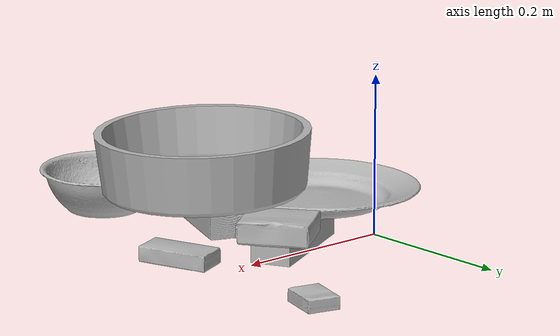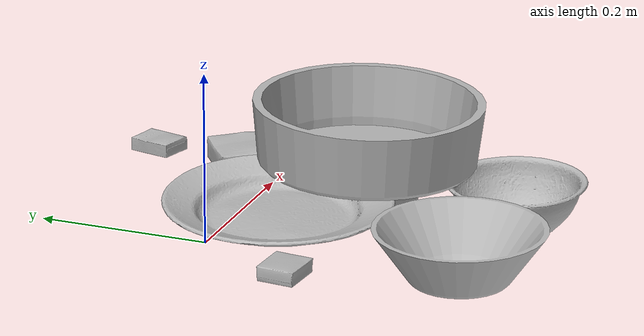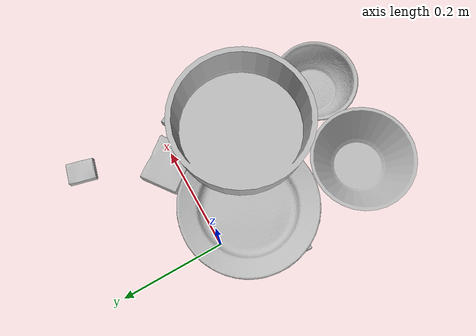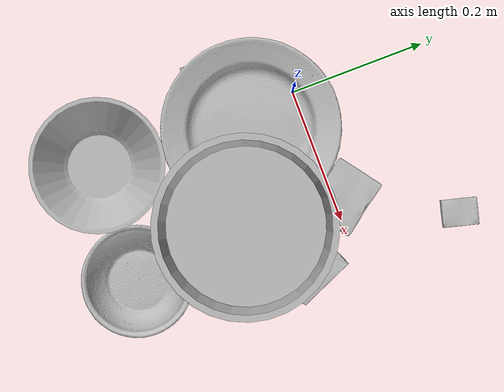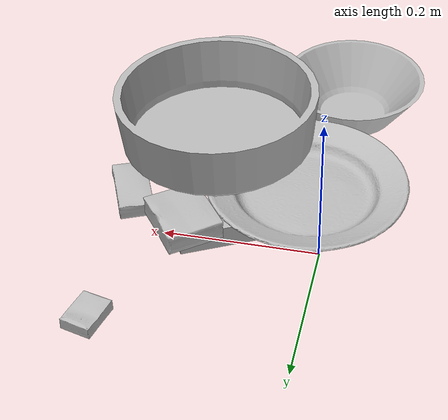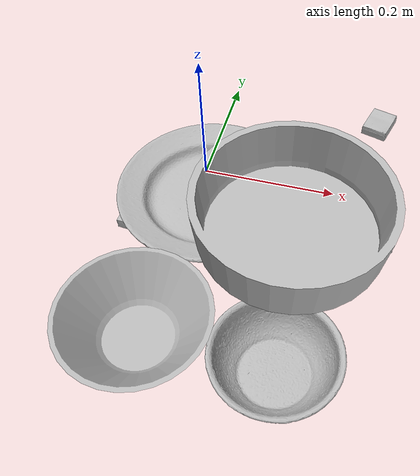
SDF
<sdf version="1.4">
  <world name="default">
    <light name="light1" type="point">
      <pose>0 0 1 0 0 0</pose>
      <diffuse>3 3 3 1</diffuse>
      <specular>3 3 3 1</specular>
    </light>
    <light name="light2" type="point">
      <pose>0 0.5 2 0 0 0</pose>
      <diffuse>1 1 1 1</diffuse>
      <specular>1 1 1 1</specular>
    </light>
    <light name="light3" type="point">
      <pose>0 0.5 2 0 0 0</pose>
      <diffuse>3 3 3 1</diffuse>
      <specular>3 3 3 1</specular>
    </light>
    <scene>
      <ambient>0.7 0.7 0.7</ambient>
    </scene>
    <model name="box1">
      <link name="link_box1">
        <collision name="default">
          <geometry>
            <mesh>
              <uri>model://jenga/collision_meshes/collision.obj</uri>
              <scale>1.0 1.0 1.0</scale>
            </mesh>
          </geometry>
          <surface>
            <friction>
              <ode>
                <mu>0.5</mu>
                <mu2>0.5</mu2>
              </ode>
            </friction>
          <contact>
        <ode>
            <max_vel>0</max_vel>
            <min_depth>0.0001</min_depth>
            <kp>1e8</kp>
        </ode>
    </contact></surface>
        </collision>
        <visual name="default">
          <geometry>
            <mesh>
              <uri>model://jenga/visual_meshes/visual.dae</uri>
              <scale>1.0 1.0 1.0</scale>
            </mesh>
          </geometry>
        </visual>
        <inertial>
          <mass>0.24226053059101105</mass>
          <pose>-2.502855807051674e-07 -0.0001025000965455547 -4.092339804628864e-05 0.0 -7.34215461761844e-07 0.0</pose>
          <inertia>
            <ixx>6.703936e-05</ixx>
            <iyy>0.0004542569</iyy>
            <izz>0.00048495785</izz>
            <ixy>0</ixy>
            <ixz>0</ixz>
            <iyz>0</iyz>
          </inertia>
        </inertial>
      </link>
      <pose>0.11413301527500153 -0.02175750583410263 0.015002173371613026 -2.245402170634637e-05 -5.897791819427794e-06 0.46977616080872353</pose>
    </model>
    <model name="box11">
      <link name="link_box11">
        <collision name="default">
          <geometry>
            <mesh>
              <uri>model://sugar_box/collision_meshes/collision.obj</uri>
              <scale>0.5 0.5 0.5</scale>
            </mesh>
          </geometry>
          <surface>
            <friction>
              <ode>
                <mu>0.5</mu>
                <mu2>0.5</mu2>
              </ode>
            </friction>
          <contact>
        <ode>
            <max_vel>0</max_vel>
            <min_depth>0.0001</min_depth>
            <kp>1e8</kp>
        </ode>
    </contact></surface>
        </collision>
        <visual name="default">
          <geometry>
            <mesh>
              <uri>model://sugar_box/visual_meshes/visual.dae</uri>
              <scale>0.5 0.5 0.5</scale>
            </mesh>
          </geometry>
        </visual>
        <inertial>
          <mass>0.06204606965184212</mass>
          <pose>0.0005171863595023751 1.9245549992774613e-05 -0.00018182402709499002 -0.0004046263588767038 0.0010506634057764815 0.0026153785560837986</pose>
          <inertia>
            <ixx>1.2924152e-05</ixx>
            <iyy>4.1773517e-05</iyy>
            <izz>5.0007893e-05</izz>
            <ixy>0</ixy>
            <ixz>0</ixz>
            <iyz>0</iyz>
          </inertia>
        </inertial>
      </link>
      <pose>0.2586075961589813 -0.0616450272500515 0.01139931008219719 0.0007753932594987581 -0.023432696748576533 -1.169923159337583</pose>
    </model>
    <model name="box2">
      <link name="link_box2">
        <collision name="default">
          <geometry>
            <mesh>
              <uri>model://gelatin_box/collision_meshes/collision.obj</uri>
              <scale>1.0 1.0 1.0</scale>
            </mesh>
          </geometry>
          <surface>
            <friction>
              <ode>
                <mu>0.5</mu>
                <mu2>0.5</mu2>
              </ode>
            </friction>
          <contact>
        <ode>
            <max_vel>0</max_vel>
            <min_depth>0.0001</min_depth>
            <kp>1e8</kp>
        </ode>
    </contact></surface>
        </collision>
        <visual name="default">
          <geometry>
            <mesh>
              <uri>model://gelatin_box/visual_meshes/visual.dae</uri>
              <scale>1.0 1.0 1.0</scale>
            </mesh>
          </geometry>
        </visual>
        <inertial>
          <mass>0.13706544041633606</mass>
          <pose>0.000431961816502735 0.00011156871187267825 -0.0003640321083366871 -0.0010503719975702072 -0.0047558196187974565 0.01644056506069309</pose>
          <inertia>
            <ixx>9.675702e-05</ixx>
            <iyy>6.911303e-05</iyy>
            <izz>0.00014728573</izz>
            <ixy>0</ixy>
            <ixz>0</ixz>
            <iyz>0</iyz>
          </inertia>
        </inertial>
      </link>
      <pose>0.16977447271347046 0.0138732073828578 0.04507885128259659 0.0015912886351442694 0.004312551466610397 0.6290218233234725</pose>
    </model>
    <model name="box21">
      <link name="link_box21">
        <collision name="default">
          <geometry>
            <mesh>
              <uri>model://pudding_box/collision_meshes/collision.obj</uri>
              <scale>0.5 0.5 0.5</scale>
            </mesh>
          </geometry>
          <surface>
            <friction>
              <ode>
                <mu>0.5</mu>
                <mu2>0.5</mu2>
              </ode>
            </friction>
          <contact>
        <ode>
            <max_vel>0</max_vel>
            <min_depth>0.0001</min_depth>
            <kp>1e8</kp>
        </ode>
    </contact></surface>
        </collision>
        <visual name="default">
          <geometry>
            <mesh>
              <uri>model://pudding_box/visual_meshes/visual.dae</uri>
              <scale>0.5 0.5 0.5</scale>
            </mesh>
          </geometry>
        </visual>
        <inertial>
          <mass>0.041178666055202484</mass>
          <pose>0.00024474109522998333 0.00040339428232982755 -0.00025944141088984907 0.005213101335872514 -0.006603799630434185 0.020079819569992066</pose>
          <inertia>
            <ixx>1.163759e-05</ixx>
            <iyy>7.8298535e-06</iyy>
            <izz>1.7185945e-05</izz>
            <ixy>0</ixy>
            <ixz>0</ixz>
            <iyz>0</iyz>
          </inertia>
        </inertial>
      </link>
      <pose>-0.06138944625854492 -0.12007550895214081 0.009862903505563736 0.022348583079130988 -0.011391653127357779 1.5290264395933175</pose>
    </model>
    <model name="box3">
      <link name="link_box3">
        <collision name="default">
          <geometry>
            <mesh>
              <uri>model://cracker_box/collision_meshes/collision.obj</uri>
              <scale>0.25 0.25 0.25</scale>
            </mesh>
          </geometry>
          <surface>
            <friction>
              <ode>
                <mu>0.5</mu>
                <mu2>0.5</mu2>
              </ode>
            </friction>
          <contact>
        <ode>
            <max_vel>0</max_vel>
            <min_depth>0.0001</min_depth>
            <kp>1e8</kp>
        </ode>
    </contact></surface>
        </collision>
        <visual name="default">
          <geometry>
            <mesh>
              <uri>model://cracker_box/visual_meshes/visual.dae</uri>
              <scale>0.25 0.25 0.25</scale>
            </mesh>
          </geometry>
        </visual>
        <inertial>
          <mass>0.02017100155353546</mass>
          <pose>0.00023660367878619581 6.358561222441494e-05 -0.00042573839891701937 -0.0003162077973682912 -0.011106487737506417 0.0025467945369474112</pose>
          <inertia>
            <ixx>3.2066264e-06</ixx>
            <iyy>5.2947703e-06</iyy>
            <izz>7.556123e-06</izz>
            <ixy>0</ixy>
            <ixz>0</ixz>
            <iyz>0</iyz>
          </inertia>
        </inertial>
      </link>
      <pose>0.24945838749408722 0.16441750526428223 0.009120447561144829 -0.011788001610145647 -0.007367071481328324 -1.8314683151478321</pose>
    </model>
    <model name="box31">
      <link name="link_box31">
        <collision name="default">
          <geometry>
            <mesh>
              <uri>model://wood_block/collision_meshes/collision.obj</uri>
              <scale>0.5 0.5 0.5</scale>
            </mesh>
          </geometry>
          <surface>
            <friction>
              <ode>
                <mu>0.5</mu>
                <mu2>0.5</mu2>
              </ode>
            </friction>
          <contact>
        <ode>
            <max_vel>0</max_vel>
            <min_depth>0.0001</min_depth>
            <kp>1e8</kp>
        </ode>
    </contact></surface>
        </collision>
        <visual name="default">
          <geometry>
            <mesh>
              <uri>model://wood_block/visual_meshes/visual.dae</uri>
              <scale>0.5 0.5 0.5</scale>
            </mesh>
          </geometry>
        </visual>
        <inertial>
          <mass>0.1962708830833435</mass>
          <pose>-2.9066577553749084e-06 -0.000285404734313488 0.00013204291462898254 -0.05220969561834339 -0.0051926963065425085 -0.006861379449261536</pose>
          <inertia>
            <ixx>6.566003e-05</ixx>
            <iyy>0.00020742005</iyy>
            <izz>0.00020664421</izz>
            <ixy>0</ixy>
            <ixz>0</ixz>
            <iyz>0</iyz>
          </inertia>
        </inertial>
      </link>
      <pose>0.1309829205274582 -0.14893178641796112 0.022630833089351654 -0.005354083557948101 0.005724998097387855 1.1945407787790192</pose>
    </model>
    <model name="plate1">
      <link name="link_plate1">
        <collision name="default">
          <geometry>
            <mesh>
              <uri>model://plate/collision_meshes/collision.obj</uri>
              <scale>1.0 1.0 1.0</scale>
            </mesh>
          </geometry>
          <surface>
            <friction>
              <ode>
                <mu>0.5</mu>
                <mu2>0.5</mu2>
              </ode>
            </friction>
          <contact>
        <ode>
            <max_vel>0</max_vel>
            <min_depth>0.0001</min_depth>
            <kp>1e8</kp>
        </ode>
    </contact></surface>
        </collision>
        <visual name="default">
          <geometry>
            <mesh>
              <uri>model://plate/visual_meshes/visual.dae</uri>
              <scale>1.0 1.0 1.0</scale>
            </mesh>
          </geometry>
        </visual>
        <inertial>
          <mass>0.17345036566257477</mass>
          <pose>-0.0006044625188224018 0.00027825802681036294 -0.0010561991948634386 0.0022187574415082918 -0.0032254973035065115 0.4526175972404713</pose>
          <inertia>
            <ixx>0.00081140426</ixx>
            <iyy>0.0008036436</iyy>
            <izz>0.0015869853</izz>
            <ixy>0</ixy>
            <ixz>0</ixz>
            <iyz>0</iyz>
          </inertia>
        </inertial>
      </link>
      <pose>0.030180374160408974 -0.07566992193460464 0.042302221059799194 0.006230320752604986 0.025550965639662134 -2.220034639426287</pose>
    </model>
    <model name="bowl1">
      <link name="link_bowl1">
        <collision name="default">
          <geometry>
            <mesh>
              <uri>model://bowl/collision_meshes/collision.obj</uri>
              <scale>1.0 1.0 1.0</scale>
            </mesh>
          </geometry>
          <surface>
            <friction>
              <ode>
                <mu>0.5</mu>
                <mu2>0.5</mu2>
              </ode>
            </friction>
          <contact>
        <ode>
            <max_vel>0</max_vel>
            <min_depth>0.0001</min_depth>
            <kp>1e8</kp>
        </ode>
    </contact></surface>
        </collision>
        <visual name="default">
          <geometry>
            <mesh>
              <uri>model://bowl/visual_meshes/visual.dae</uri>
              <scale>1.0 1.0 1.0</scale>
            </mesh>
          </geometry>
        </visual>
        <inertial>
          <mass>0.11633910983800888</mass>
          <pose>0.00020445004338398576 -0.0010302083101123571 -0.0008042659610509872 -0.01576420252076368 0.01454664289610389 0.7140315541596068</pose>
          <inertia>
            <ixx>0.0002672402</ixx>
            <iyy>0.000261269</iyy>
            <izz>0.00044958986</izz>
            <ixy>0</ixy>
            <ixz>0</ixz>
            <iyz>0</iyz>
          </inertia>
        </inertial>
      </link>
      <pose>0.17732024192810059 -0.3057710826396942 0.027828244492411613 -0.0010693325169947572 0.00030217969713636835 -0.36300450404130474</pose>
    </model>
    <model name="plate2">
      <link name="link_plate2">
        <collision name="default">
          <geometry>
            <mesh>
              <uri>model://pan_tefal/collision_meshes/collision.obj</uri>
              <scale>1.0 1.0 1.0</scale>
            </mesh>
          </geometry>
          <surface>
            <friction>
              <ode>
                <mu>0.5</mu>
                <mu2>0.5</mu2>
              </ode>
            </friction>
          <contact>
        <ode>
            <max_vel>0</max_vel>
            <min_depth>0.0001</min_depth>
            <kp>1e8</kp>
        </ode>
    </contact></surface>
        </collision>
        <visual name="default">
          <geometry>
            <mesh>
              <uri>model://pan_tefal/visual_meshes/visual.dae</uri>
              <scale>1.0 1.0 1.0</scale>
            </mesh>
          </geometry>
        </visual>
        <inertial>
          <mass>0.6251956820487976</mass>
          <pose>-0.00018002417345996946 3.279016891610809e-05 -0.00851493515074253 0.0008190253681579672 -0.00033013925853852665 -0.331857454583129</pose>
          <inertia>
            <ixx>0.004315697</ixx>
            <iyy>0.00434352</iyy>
            <izz>0.007944365</izz>
            <ixy>0</ixy>
            <ixz>0</ixz>
            <iyz>0</iyz>
          </inertia>
        </inertial>
      </link>
      <pose>0.1598895639181137 -0.1335403025150299 0.0947987362742424 0.0008446193918476967 0.029642652341166524 -0.7402335735361414</pose>
    </model>
    <model name="bowl2">
      <link name="link_bowl2">
        <collision name="default">
          <geometry>
            <mesh>
              <uri>model://bowl_a/collision_meshes/collision.obj</uri>
              <scale>1.0 1.0 1.0</scale>
            </mesh>
          </geometry>
          <surface>
            <friction>
              <ode>
                <mu>0.5</mu>
                <mu2>0.5</mu2>
              </ode>
            </friction>
          <contact>
        <ode>
            <max_vel>0</max_vel>
            <min_depth>0.0001</min_depth>
            <kp>1e8</kp>
        </ode>
    </contact></surface>
        </collision>
        <visual name="default">
          <geometry>
            <mesh>
              <uri>model://bowl_a/visual_meshes/visual.dae</uri>
              <scale>1.0 1.0 1.0</scale>
            </mesh>
          </geometry>
        </visual>
        <inertial>
          <mass>0.3434441387653351</mass>
          <pose>0.0002786742115858942 4.731103399535641e-05 -0.0013765294570475817 -0.000980532155977885 -0.0010938290454026757 -0.191241060811112</pose>
          <inertia>
            <ixx>0.0009778013</ixx>
            <iyy>0.0009838042</iyy>
            <izz>0.0017390571</izz>
            <ixy>0</ixy>
            <ixz>0</ixz>
            <iyz>0</iyz>
          </inertia>
        </inertial>
      </link>
      <pose>0.002290573436766863 -0.300969660282135 0.03038245625793934 -1.360555259597123e-05 1.0892884755257081e-05 -2.4268426124025053</pose>
    </model>
  <physics type="ode">
      <max_contacts>50</max_contacts>
      <ode>
        <solver>
          <type>quick</type>
          <iters>75</iters>
        </solver>
        <constraints>
          <contact_max_correcting_vel>0</contact_max_correcting_vel>
          <contact_surface_layer>0</contact_surface_layer>
        </constraints>
      </ode>
    </physics></world>
</sdf>
